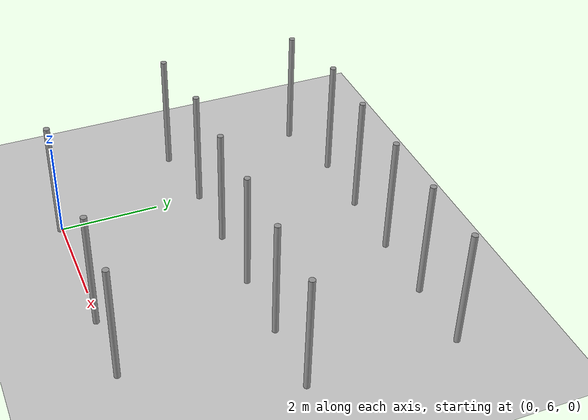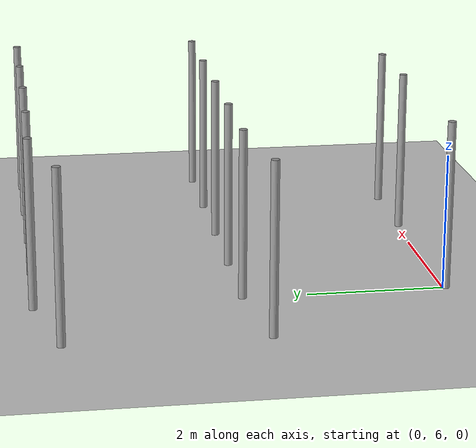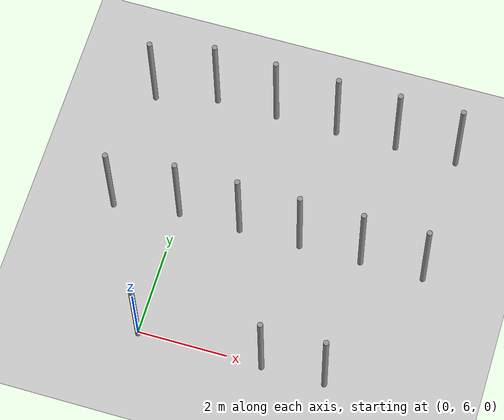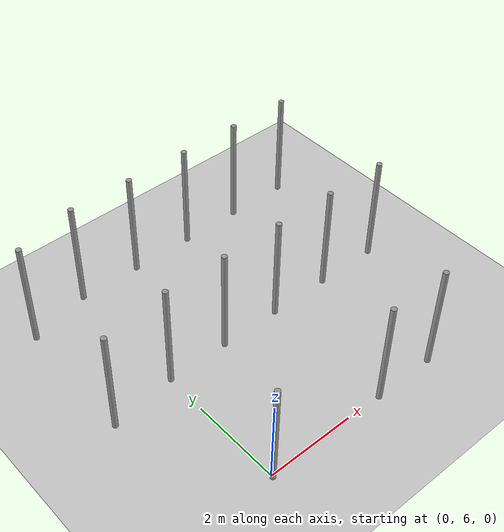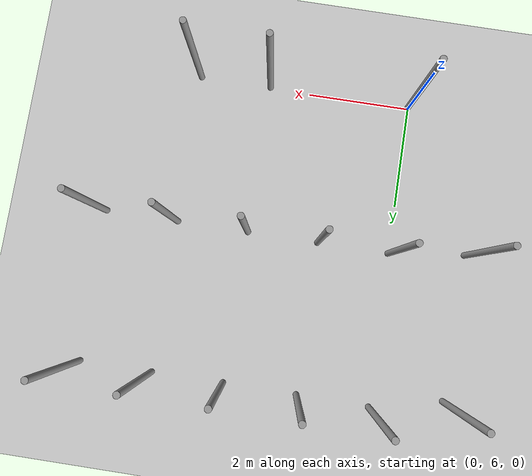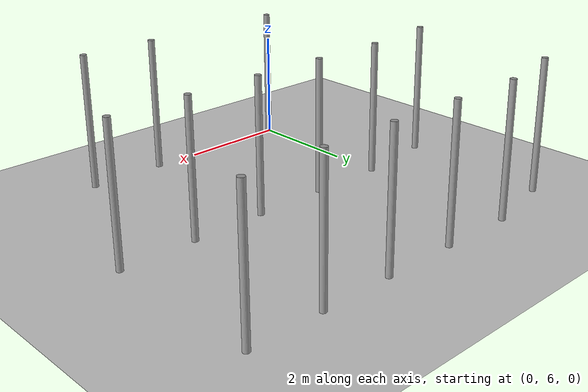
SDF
<sdf version="1.6">
 <world name="default">
  <model name="ground_plane">
   <static>1</static>
   <link name="link">
    <collision name="collision">
     <geometry><plane><normal>0 0 1</normal><size>100 100</size></plane></geometry>
     <surface><friction><ode><mu>100</mu><mu2>50</mu2></ode></friction></surface>
    </collision>
    <visual name="visual">
     <cast_shadows>0</cast_shadows>
     <geometry><plane><normal>0 0 1</normal><size>100 100</size></plane></geometry>
     <material>
      <script><uri>file://media/materials/scripts/gazebo.material</uri><name>Gazebo/Grey</name></script>
     </material>
    </visual>
   </link>
  </model>
  <model name="pole">
   <link name="link_0">
    <inertial>
     <mass>0.0364582</mass>
     <inertia>
      <ixx>0.00312124</ixx>
      <ixy>0</ixy>
      <ixz>0</ixz>
      <iyy>0.00312124</iyy>
      <iyz>0</iyz>
      <izz>0.00016615</izz>
     </inertia>
    </inertial>
    <visual name="visual">
     <geometry><cylinder><radius>0.06</radius><length>2.5</length></cylinder></geometry>
     <material>
      <lighting>1</lighting>
      <script><uri>file://media/materials/scripts/gazebo.material</uri><name>Gazebo/Grey</name></script>
      <ambient>0.3 0.3 0.3 1</ambient>
      <diffuse>0.7 0.7 0.7 1</diffuse>
      <specular>0.01 0.01 0.01 1</specular>
      <emissive>0 0 0 1</emissive>
      <shader type="vertex"><normal_map>__default__</normal_map></shader>
     </material>
    </visual>
    <collision name="collision">
     <geometry><cylinder><radius>0.06</radius><length>2.5</length></cylinder></geometry>
     <surface>
      <friction>
       <ode><mu>1</mu><mu2>1</mu2><fdir1>0 0 0</fdir1><slip1>0</slip1><slip2>0</slip2></ode>
       <torsional>
        <coefficient>1</coefficient>
        <patch_radius>0</patch_radius>
        <surface_radius>0</surface_radius>
        <use_patch_radius>1</use_patch_radius>
        <ode><slip>0</slip></ode>
       </torsional>
      </friction>
      <bounce><restitution_coefficient>0</restitution_coefficient><threshold>1e+06</threshold></bounce>
      <contact>
       <collide_without_contact>0</collide_without_contact>
       <collide_without_contact_bitmask>1</collide_without_contact_bitmask>
       <collide_bitmask>1</collide_bitmask>
       <ode>
        <soft_cfm>0</soft_cfm>
        <soft_erp>0.2</soft_erp>
        <kp>1e+13</kp>
        <kd>1</kd>
        <max_vel>0.01</max_vel>
        <min_depth>0</min_depth>
       </ode>
       <bullet>
        <split_impulse>1</split_impulse>
        <split_impulse_penetration_threshold>-0.01</split_impulse_penetration_threshold>
        <soft_cfm>0</soft_cfm>
        <soft_erp>0.2</soft_erp>
        <kp>1e+13</kp>
        <kd>1</kd>
       </bullet>
      </contact>
     </surface>
    </collision>
   </link>
   <static>0</static>
   <pose>0.00673 5.96152 1.24999 0 -6e-06 -0.017984</pose>
  </model>
  <model name="pole_0">
   <link name="link_0">
    <inertial>
     <mass>0.0364582</mass>
     <inertia>
      <ixx>0.00312124</ixx>
      <ixy>0</ixy>
      <ixz>0</ixz>
      <iyy>0.00312124</iyy>
      <iyz>0</iyz>
      <izz>0.00016615</izz>
     </inertia>
    </inertial>
    <visual name="visual">
     <geometry><cylinder><radius>0.06</radius><length>2.5</length></cylinder></geometry>
     <material>
      <lighting>1</lighting>
      <script><uri>file://media/materials/scripts/gazebo.material</uri><name>Gazebo/Grey</name></script>
      <ambient>0.3 0.3 0.3 1</ambient>
      <diffuse>0.7 0.7 0.7 1</diffuse>
      <specular>0.01 0.01 0.01 1</specular>
      <emissive>0 0 0 1</emissive>
      <shader type="vertex"><normal_map>__default__</normal_map></shader>
     </material>
    </visual>
    <collision name="collision">
     <geometry><cylinder><radius>0.06</radius><length>2.5</length></cylinder></geometry>
     <surface>
      <friction>
       <ode><mu>1</mu><mu2>1</mu2><fdir1>0 0 0</fdir1><slip1>0</slip1><slip2>0</slip2></ode>
       <torsional>
        <coefficient>1</coefficient>
        <patch_radius>0</patch_radius>
        <surface_radius>0</surface_radius>
        <use_patch_radius>1</use_patch_radius>
        <ode><slip>0</slip></ode>
       </torsional>
      </friction>
      <bounce><restitution_coefficient>0</restitution_coefficient><threshold>1e+06</threshold></bounce>
      <contact>
       <collide_without_contact>0</collide_without_contact>
       <collide_without_contact_bitmask>1</collide_without_contact_bitmask>
       <collide_bitmask>1</collide_bitmask>
       <ode>
        <soft_cfm>0</soft_cfm>
        <soft_erp>0.2</soft_erp>
        <kp>1e+13</kp>
        <kd>1</kd>
        <max_vel>0.01</max_vel>
        <min_depth>0</min_depth>
       </ode>
       <bullet>
        <split_impulse>1</split_impulse>
        <split_impulse_penetration_threshold>-0.01</split_impulse_penetration_threshold>
        <soft_cfm>0</soft_cfm>
        <soft_erp>0.2</soft_erp>
        <kp>1e+13</kp>
        <kd>1</kd>
       </bullet>
      </contact>
     </surface>
    </collision>
   </link>
   <static>0</static>
   <pose>0.013537 8.94163 1.24999 0 -1e-06 -0.020818</pose>
  </model>
  <model name="pole_1">
   <link name="link_0">
    <inertial>
     <mass>0.0364582</mass>
     <inertia>
      <ixx>0.00312124</ixx>
      <ixy>0</ixy>
      <ixz>0</ixz>
      <iyy>0.00312124</iyy>
      <iyz>0</iyz>
      <izz>0.00016615</izz>
     </inertia>
    </inertial>
    <visual name="visual">
     <geometry><cylinder><radius>0.06</radius><length>2.5</length></cylinder></geometry>
     <material>
      <lighting>1</lighting>
      <script><uri>file://media/materials/scripts/gazebo.material</uri><name>Gazebo/Grey</name></script>
      <ambient>0.3 0.3 0.3 1</ambient>
      <diffuse>0.7 0.7 0.7 1</diffuse>
      <specular>0.01 0.01 0.01 1</specular>
      <emissive>0 0 0 1</emissive>
      <shader type="vertex"><normal_map>__default__</normal_map></shader>
     </material>
    </visual>
    <collision name="collision">
     <geometry><cylinder><radius>0.06</radius><length>2.5</length></cylinder></geometry>
     <surface>
      <friction>
       <ode><mu>1</mu><mu2>1</mu2><fdir1>0 0 0</fdir1><slip1>0</slip1><slip2>0</slip2></ode>
       <torsional>
        <coefficient>1</coefficient>
        <patch_radius>0</patch_radius>
        <surface_radius>0</surface_radius>
        <use_patch_radius>1</use_patch_radius>
        <ode><slip>0</slip></ode>
       </torsional>
      </friction>
      <bounce><restitution_coefficient>0</restitution_coefficient><threshold>1e+06</threshold></bounce>
      <contact>
       <collide_without_contact>0</collide_without_contact>
       <collide_without_contact_bitmask>1</collide_without_contact_bitmask>
       <collide_bitmask>1</collide_bitmask>
       <ode>
        <soft_cfm>0</soft_cfm>
        <soft_erp>0.2</soft_erp>
        <kp>1e+13</kp>
        <kd>1</kd>
        <max_vel>0.01</max_vel>
        <min_depth>0</min_depth>
       </ode>
       <bullet>
        <split_impulse>1</split_impulse>
        <split_impulse_penetration_threshold>-0.01</split_impulse_penetration_threshold>
        <soft_cfm>0</soft_cfm>
        <soft_erp>0.2</soft_erp>
        <kp>1e+13</kp>
        <kd>1</kd>
       </bullet>
      </contact>
     </surface>
    </collision>
   </link>
   <static>0</static>
   <pose>-0.008089 11.9214 1.25 0 1e-06 -0.020458</pose>
  </model>
  <model name="pole_13">
   <link name="link_0">
    <inertial>
     <mass>0.0364582</mass>
     <inertia>
      <ixx>0.00312124</ixx>
      <ixy>0</ixy>
      <ixz>0</ixz>
      <iyy>0.00312124</iyy>
      <iyz>0</iyz>
      <izz>0.00016615</izz>
     </inertia>
    </inertial>
    <visual name="visual">
     <geometry><cylinder><radius>0.06</radius><length>2.5</length></cylinder></geometry>
     <material>
      <lighting>1</lighting>
      <script><uri>file://media/materials/scripts/gazebo.material</uri><name>Gazebo/Grey</name></script>
      <ambient>0.3 0.3 0.3 1</ambient>
      <diffuse>0.7 0.7 0.7 1</diffuse>
      <specular>0.01 0.01 0.01 1</specular>
      <emissive>0 0 0 1</emissive>
      <shader type="vertex"><normal_map>__default__</normal_map></shader>
     </material>
    </visual>
    <collision name="collision">
     <geometry><cylinder><radius>0.06</radius><length>2.5</length></cylinder></geometry>
     <surface>
      <friction>
       <ode><mu>1</mu><mu2>1</mu2><fdir1>0 0 0</fdir1><slip1>0</slip1><slip2>0</slip2></ode>
       <torsional>
        <coefficient>1</coefficient>
        <patch_radius>0</patch_radius>
        <surface_radius>0</surface_radius>
        <use_patch_radius>1</use_patch_radius>
        <ode><slip>0</slip></ode>
       </torsional>
      </friction>
      <bounce><restitution_coefficient>0</restitution_coefficient><threshold>1e+06</threshold></bounce>
      <contact>
       <collide_without_contact>0</collide_without_contact>
       <collide_without_contact_bitmask>1</collide_without_contact_bitmask>
       <collide_bitmask>1</collide_bitmask>
       <ode>
        <soft_cfm>0</soft_cfm>
        <soft_erp>0.2</soft_erp>
        <kp>1e+13</kp>
        <kd>1</kd>
        <max_vel>0.01</max_vel>
        <min_depth>0</min_depth>
       </ode>
       <bullet>
        <split_impulse>1</split_impulse>
        <split_impulse_penetration_threshold>-0.01</split_impulse_penetration_threshold>
        <soft_cfm>0</soft_cfm>
        <soft_erp>0.2</soft_erp>
        <kp>1e+13</kp>
        <kd>1</kd>
       </bullet>
      </contact>
     </surface>
    </collision>
   </link>
   <static>0</static>
   <pose>2.80805 5.96133 1.24999 -0 1e-06 -0.014908</pose>
  </model>
  <model name="pole_14">
   <link name="link_0">
    <inertial>
     <mass>0.0364582</mass>
     <inertia>
      <ixx>0.00312124</ixx>
      <ixy>0</ixy>
      <ixz>0</ixz>
      <iyy>0.00312124</iyy>
      <iyz>0</iyz>
      <izz>0.00016615</izz>
     </inertia>
    </inertial>
    <visual name="visual">
     <geometry><cylinder><radius>0.06</radius><length>2.5</length></cylinder></geometry>
     <material>
      <lighting>1</lighting>
      <script><uri>file://media/materials/scripts/gazebo.material</uri><name>Gazebo/Grey</name></script>
      <ambient>0.3 0.3 0.3 1</ambient>
      <diffuse>0.7 0.7 0.7 1</diffuse>
      <specular>0.01 0.01 0.01 1</specular>
      <emissive>0 0 0 1</emissive>
      <shader type="vertex"><normal_map>__default__</normal_map></shader>
     </material>
    </visual>
    <collision name="collision">
     <geometry><cylinder><radius>0.06</radius><length>2.5</length></cylinder></geometry>
     <surface>
      <friction>
       <ode><mu>1</mu><mu2>1</mu2><fdir1>0 0 0</fdir1><slip1>0</slip1><slip2>0</slip2></ode>
       <torsional>
        <coefficient>1</coefficient>
        <patch_radius>0</patch_radius>
        <surface_radius>0</surface_radius>
        <use_patch_radius>1</use_patch_radius>
        <ode><slip>0</slip></ode>
       </torsional>
      </friction>
      <bounce><restitution_coefficient>0</restitution_coefficient><threshold>1e+06</threshold></bounce>
      <contact>
       <collide_without_contact>0</collide_without_contact>
       <collide_without_contact_bitmask>1</collide_without_contact_bitmask>
       <collide_bitmask>1</collide_bitmask>
       <ode>
        <soft_cfm>0</soft_cfm>
        <soft_erp>0.2</soft_erp>
        <kp>1e+13</kp>
        <kd>1</kd>
        <max_vel>0.01</max_vel>
        <min_depth>0</min_depth>
       </ode>
       <bullet>
        <split_impulse>1</split_impulse>
        <split_impulse_penetration_threshold>-0.01</split_impulse_penetration_threshold>
        <soft_cfm>0</soft_cfm>
        <soft_erp>0.2</soft_erp>
        <kp>1e+13</kp>
        <kd>1</kd>
       </bullet>
      </contact>
     </surface>
    </collision>
   </link>
   <static>0</static>
   <pose>4.21953 5.96127 1.24999 0 1e-06 -0.013446</pose>
  </model>
  <model name="pole_16">
   <link name="link_0">
    <inertial>
     <mass>0.0364582</mass>
     <inertia>
      <ixx>0.00312124</ixx>
      <ixy>0</ixy>
      <ixz>0</ixz>
      <iyy>0.00312124</iyy>
      <iyz>0</iyz>
      <izz>0.00016615</izz>
     </inertia>
    </inertial>
    <visual name="visual">
     <geometry><cylinder><radius>0.06</radius><length>2.5</length></cylinder></geometry>
     <material>
      <lighting>1</lighting>
      <script><uri>file://media/materials/scripts/gazebo.material</uri><name>Gazebo/Grey</name></script>
      <ambient>0.3 0.3 0.3 1</ambient>
      <diffuse>0.7 0.7 0.7 1</diffuse>
      <specular>0.01 0.01 0.01 1</specular>
      <emissive>0 0 0 1</emissive>
      <shader type="vertex"><normal_map>__default__</normal_map></shader>
     </material>
    </visual>
    <collision name="collision">
     <geometry><cylinder><radius>0.06</radius><length>2.5</length></cylinder></geometry>
     <surface>
      <friction>
       <ode><mu>1</mu><mu2>1</mu2><fdir1>0 0 0</fdir1><slip1>0</slip1><slip2>0</slip2></ode>
       <torsional>
        <coefficient>1</coefficient>
        <patch_radius>0</patch_radius>
        <surface_radius>0</surface_radius>
        <use_patch_radius>1</use_patch_radius>
        <ode><slip>0</slip></ode>
       </torsional>
      </friction>
      <bounce><restitution_coefficient>0</restitution_coefficient><threshold>1e+06</threshold></bounce>
      <contact>
       <collide_without_contact>0</collide_without_contact>
       <collide_without_contact_bitmask>1</collide_without_contact_bitmask>
       <collide_bitmask>1</collide_bitmask>
       <ode>
        <soft_cfm>0</soft_cfm>
        <soft_erp>0.2</soft_erp>
        <kp>1e+13</kp>
        <kd>1</kd>
        <max_vel>0.01</max_vel>
        <min_depth>0</min_depth>
       </ode>
       <bullet>
        <split_impulse>1</split_impulse>
        <split_impulse_penetration_threshold>-0.01</split_impulse_penetration_threshold>
        <soft_cfm>0</soft_cfm>
        <soft_erp>0.2</soft_erp>
        <kp>1e+13</kp>
        <kd>1</kd>
       </bullet>
      </contact>
     </surface>
    </collision>
   </link>
   <static>0</static>
   <pose>1.41315 8.94092 1.25 -1e-06 1e-06 -0.01461</pose>
  </model>
  <model name="pole_17">
   <link name="link_0">
    <inertial>
     <mass>0.0364582</mass>
     <inertia>
      <ixx>0.00312124</ixx>
      <ixy>0</ixy>
      <ixz>0</ixz>
      <iyy>0.00312124</iyy>
      <iyz>0</iyz>
      <izz>0.00016615</izz>
     </inertia>
    </inertial>
    <visual name="visual">
     <geometry><cylinder><radius>0.06</radius><length>2.5</length></cylinder></geometry>
     <material>
      <lighting>1</lighting>
      <script><uri>file://media/materials/scripts/gazebo.material</uri><name>Gazebo/Grey</name></script>
      <ambient>0.3 0.3 0.3 1</ambient>
      <diffuse>0.7 0.7 0.7 1</diffuse>
      <specular>0.01 0.01 0.01 1</specular>
      <emissive>0 0 0 1</emissive>
      <shader type="vertex"><normal_map>__default__</normal_map></shader>
     </material>
    </visual>
    <collision name="collision">
     <geometry><cylinder><radius>0.06</radius><length>2.5</length></cylinder></geometry>
     <surface>
      <friction>
       <ode><mu>1</mu><mu2>1</mu2><fdir1>0 0 0</fdir1><slip1>0</slip1><slip2>0</slip2></ode>
       <torsional>
        <coefficient>1</coefficient>
        <patch_radius>0</patch_radius>
        <surface_radius>0</surface_radius>
        <use_patch_radius>1</use_patch_radius>
        <ode><slip>0</slip></ode>
       </torsional>
      </friction>
      <bounce><restitution_coefficient>0</restitution_coefficient><threshold>1e+06</threshold></bounce>
      <contact>
       <collide_without_contact>0</collide_without_contact>
       <collide_without_contact_bitmask>1</collide_without_contact_bitmask>
       <collide_bitmask>1</collide_bitmask>
       <ode>
        <soft_cfm>0</soft_cfm>
        <soft_erp>0.2</soft_erp>
        <kp>1e+13</kp>
        <kd>1</kd>
        <max_vel>0.01</max_vel>
        <min_depth>0</min_depth>
       </ode>
       <bullet>
        <split_impulse>1</split_impulse>
        <split_impulse_penetration_threshold>-0.01</split_impulse_penetration_threshold>
        <soft_cfm>0</soft_cfm>
        <soft_erp>0.2</soft_erp>
        <kp>1e+13</kp>
        <kd>1</kd>
       </bullet>
      </contact>
     </surface>
    </collision>
   </link>
   <static>0</static>
   <pose>2.7999 8.94105 1.24999 1e-06 -1e-06 -0.01225</pose>
  </model>
  <model name="pole_18">
   <link name="link_0">
    <inertial>
     <mass>0.0364582</mass>
     <inertia>
      <ixx>0.00312124</ixx>
      <ixy>0</ixy>
      <ixz>0</ixz>
      <iyy>0.00312124</iyy>
      <iyz>0</iyz>
      <izz>0.00016615</izz>
     </inertia>
    </inertial>
    <visual name="visual">
     <geometry><cylinder><radius>0.06</radius><length>2.5</length></cylinder></geometry>
     <material>
      <lighting>1</lighting>
      <script><uri>file://media/materials/scripts/gazebo.material</uri><name>Gazebo/Grey</name></script>
      <ambient>0.3 0.3 0.3 1</ambient>
      <diffuse>0.7 0.7 0.7 1</diffuse>
      <specular>0.01 0.01 0.01 1</specular>
      <emissive>0 0 0 1</emissive>
      <shader type="vertex"><normal_map>__default__</normal_map></shader>
     </material>
    </visual>
    <collision name="collision">
     <geometry><cylinder><radius>0.06</radius><length>2.5</length></cylinder></geometry>
     <surface>
      <friction>
       <ode><mu>1</mu><mu2>1</mu2><fdir1>0 0 0</fdir1><slip1>0</slip1><slip2>0</slip2></ode>
       <torsional>
        <coefficient>1</coefficient>
        <patch_radius>0</patch_radius>
        <surface_radius>0</surface_radius>
        <use_patch_radius>1</use_patch_radius>
        <ode><slip>0</slip></ode>
       </torsional>
      </friction>
      <bounce><restitution_coefficient>0</restitution_coefficient><threshold>1e+06</threshold></bounce>
      <contact>
       <collide_without_contact>0</collide_without_contact>
       <collide_without_contact_bitmask>1</collide_without_contact_bitmask>
       <collide_bitmask>1</collide_bitmask>
       <ode>
        <soft_cfm>0</soft_cfm>
        <soft_erp>0.2</soft_erp>
        <kp>1e+13</kp>
        <kd>1</kd>
        <max_vel>0.01</max_vel>
        <min_depth>0</min_depth>
       </ode>
       <bullet>
        <split_impulse>1</split_impulse>
        <split_impulse_penetration_threshold>-0.01</split_impulse_penetration_threshold>
        <soft_cfm>0</soft_cfm>
        <soft_erp>0.2</soft_erp>
        <kp>1e+13</kp>
        <kd>1</kd>
       </bullet>
      </contact>
     </surface>
    </collision>
   </link>
   <static>0</static>
   <pose>4.2039 8.94102 1.25 -1e-06 1e-06 -0.009517</pose>
  </model>
  <model name="pole_19">
   <link name="link_0">
    <inertial>
     <mass>0.0364582</mass>
     <inertia>
      <ixx>0.00312124</ixx>
      <ixy>0</ixy>
      <ixz>0</ixz>
      <iyy>0.00312124</iyy>
      <iyz>0</iyz>
      <izz>0.00016615</izz>
     </inertia>
    </inertial>
    <visual name="visual">
     <geometry><cylinder><radius>0.06</radius><length>2.5</length></cylinder></geometry>
     <material>
      <lighting>1</lighting>
      <script><uri>file://media/materials/scripts/gazebo.material</uri><name>Gazebo/Grey</name></script>
      <ambient>0.3 0.3 0.3 1</ambient>
      <diffuse>0.7 0.7 0.7 1</diffuse>
      <specular>0.01 0.01 0.01 1</specular>
      <emissive>0 0 0 1</emissive>
      <shader type="vertex"><normal_map>__default__</normal_map></shader>
     </material>
    </visual>
    <collision name="collision">
     <geometry><cylinder><radius>0.06</radius><length>2.5</length></cylinder></geometry>
     <surface>
      <friction>
       <ode><mu>1</mu><mu2>1</mu2><fdir1>0 0 0</fdir1><slip1>0</slip1><slip2>0</slip2></ode>
       <torsional>
        <coefficient>1</coefficient>
        <patch_radius>0</patch_radius>
        <surface_radius>0</surface_radius>
        <use_patch_radius>1</use_patch_radius>
        <ode><slip>0</slip></ode>
       </torsional>
      </friction>
      <bounce><restitution_coefficient>0</restitution_coefficient><threshold>1e+06</threshold></bounce>
      <contact>
       <collide_without_contact>0</collide_without_contact>
       <collide_without_contact_bitmask>1</collide_without_contact_bitmask>
       <collide_bitmask>1</collide_bitmask>
       <ode>
        <soft_cfm>0</soft_cfm>
        <soft_erp>0.2</soft_erp>
        <kp>1e+13</kp>
        <kd>1</kd>
        <max_vel>0.01</max_vel>
        <min_depth>0</min_depth>
       </ode>
       <bullet>
        <split_impulse>1</split_impulse>
        <split_impulse_penetration_threshold>-0.01</split_impulse_penetration_threshold>
        <soft_cfm>0</soft_cfm>
        <soft_erp>0.2</soft_erp>
        <kp>1e+13</kp>
        <kd>1</kd>
       </bullet>
      </contact>
     </surface>
    </collision>
   </link>
   <static>0</static>
   <pose>5.62938 8.94092 1.25 0 1e-06 -0.011749</pose>
  </model>
  <model name="pole_20">
   <link name="link_0">
    <inertial>
     <mass>0.0364582</mass>
     <inertia>
      <ixx>0.00312124</ixx>
      <ixy>0</ixy>
      <ixz>0</ixz>
      <iyy>0.00312124</iyy>
      <iyz>0</iyz>
      <izz>0.00016615</izz>
     </inertia>
    </inertial>
    <visual name="visual">
     <geometry><cylinder><radius>0.06</radius><length>2.5</length></cylinder></geometry>
     <material>
      <lighting>1</lighting>
      <script><uri>file://media/materials/scripts/gazebo.material</uri><name>Gazebo/Grey</name></script>
      <ambient>0.3 0.3 0.3 1</ambient>
      <diffuse>0.7 0.7 0.7 1</diffuse>
      <specular>0.01 0.01 0.01 1</specular>
      <emissive>0 0 0 1</emissive>
      <shader type="vertex"><normal_map>__default__</normal_map></shader>
     </material>
    </visual>
    <collision name="collision">
     <geometry><cylinder><radius>0.06</radius><length>2.5</length></cylinder></geometry>
     <surface>
      <friction>
       <ode><mu>1</mu><mu2>1</mu2><fdir1>0 0 0</fdir1><slip1>0</slip1><slip2>0</slip2></ode>
       <torsional>
        <coefficient>1</coefficient>
        <patch_radius>0</patch_radius>
        <surface_radius>0</surface_radius>
        <use_patch_radius>1</use_patch_radius>
        <ode><slip>0</slip></ode>
       </torsional>
      </friction>
      <bounce><restitution_coefficient>0</restitution_coefficient><threshold>1e+06</threshold></bounce>
      <contact>
       <collide_without_contact>0</collide_without_contact>
       <collide_without_contact_bitmask>1</collide_without_contact_bitmask>
       <collide_bitmask>1</collide_bitmask>
       <ode>
        <soft_cfm>0</soft_cfm>
        <soft_erp>0.2</soft_erp>
        <kp>1e+13</kp>
        <kd>1</kd>
        <max_vel>0.01</max_vel>
        <min_depth>0</min_depth>
       </ode>
       <bullet>
        <split_impulse>1</split_impulse>
        <split_impulse_penetration_threshold>-0.01</split_impulse_penetration_threshold>
        <soft_cfm>0</soft_cfm>
        <soft_erp>0.2</soft_erp>
        <kp>1e+13</kp>
        <kd>1</kd>
       </bullet>
      </contact>
     </surface>
    </collision>
   </link>
   <static>0</static>
   <pose>1.39582 11.9008 1.25 -1e-06 1e-06 -0.008718</pose>
  </model>
  <model name="pole_21">
   <link name="link_0">
    <inertial>
     <mass>0.0364582</mass>
     <inertia>
      <ixx>0.00312124</ixx>
      <ixy>0</ixy>
      <ixz>0</ixz>
      <iyy>0.00312124</iyy>
      <iyz>0</iyz>
      <izz>0.00016615</izz>
     </inertia>
    </inertial>
    <visual name="visual">
     <geometry><cylinder><radius>0.06</radius><length>2.5</length></cylinder></geometry>
     <material>
      <lighting>1</lighting>
      <script><uri>file://media/materials/scripts/gazebo.material</uri><name>Gazebo/Grey</name></script>
      <ambient>0.3 0.3 0.3 1</ambient>
      <diffuse>0.7 0.7 0.7 1</diffuse>
      <specular>0.01 0.01 0.01 1</specular>
      <emissive>0 0 0 1</emissive>
      <shader type="vertex"><normal_map>__default__</normal_map></shader>
     </material>
    </visual>
    <collision name="collision">
     <geometry><cylinder><radius>0.06</radius><length>2.5</length></cylinder></geometry>
     <surface>
      <friction>
       <ode><mu>1</mu><mu2>1</mu2><fdir1>0 0 0</fdir1><slip1>0</slip1><slip2>0</slip2></ode>
       <torsional>
        <coefficient>1</coefficient>
        <patch_radius>0</patch_radius>
        <surface_radius>0</surface_radius>
        <use_patch_radius>1</use_patch_radius>
        <ode><slip>0</slip></ode>
       </torsional>
      </friction>
      <bounce><restitution_coefficient>0</restitution_coefficient><threshold>1e+06</threshold></bounce>
      <contact>
       <collide_without_contact>0</collide_without_contact>
       <collide_without_contact_bitmask>1</collide_without_contact_bitmask>
       <collide_bitmask>1</collide_bitmask>
       <ode>
        <soft_cfm>0</soft_cfm>
        <soft_erp>0.2</soft_erp>
        <kp>1e+13</kp>
        <kd>1</kd>
        <max_vel>0.01</max_vel>
        <min_depth>0</min_depth>
       </ode>
       <bullet>
        <split_impulse>1</split_impulse>
        <split_impulse_penetration_threshold>-0.01</split_impulse_penetration_threshold>
        <soft_cfm>0</soft_cfm>
        <soft_erp>0.2</soft_erp>
        <kp>1e+13</kp>
        <kd>1</kd>
       </bullet>
      </contact>
     </surface>
    </collision>
   </link>
   <static>0</static>
   <pose>2.82135 11.8933 1.24998 -0.000105 0.000195 0.254556</pose>
  </model>
  <model name="pole_22">
   <link name="link_0">
    <inertial>
     <mass>0.0364582</mass>
     <inertia>
      <ixx>0.00312124</ixx>
      <ixy>0</ixy>
      <ixz>0</ixz>
      <iyy>0.00312124</iyy>
      <iyz>0</iyz>
      <izz>0.00016615</izz>
     </inertia>
    </inertial>
    <visual name="visual">
     <geometry><cylinder><radius>0.06</radius><length>2.5</length></cylinder></geometry>
     <material>
      <lighting>1</lighting>
      <script><uri>file://media/materials/scripts/gazebo.material</uri><name>Gazebo/Grey</name></script>
      <ambient>0.3 0.3 0.3 1</ambient>
      <diffuse>0.7 0.7 0.7 1</diffuse>
      <specular>0.01 0.01 0.01 1</specular>
      <emissive>0 0 0 1</emissive>
      <shader type="vertex"><normal_map>__default__</normal_map></shader>
     </material>
    </visual>
    <collision name="collision">
     <geometry><cylinder><radius>0.06</radius><length>2.5</length></cylinder></geometry>
     <surface>
      <friction>
       <ode><mu>1</mu><mu2>1</mu2><fdir1>0 0 0</fdir1><slip1>0</slip1><slip2>0</slip2></ode>
       <torsional>
        <coefficient>1</coefficient>
        <patch_radius>0</patch_radius>
        <surface_radius>0</surface_radius>
        <use_patch_radius>1</use_patch_radius>
        <ode><slip>0</slip></ode>
       </torsional>
      </friction>
      <bounce><restitution_coefficient>0</restitution_coefficient><threshold>1e+06</threshold></bounce>
      <contact>
       <collide_without_contact>0</collide_without_contact>
       <collide_without_contact_bitmask>1</collide_without_contact_bitmask>
       <collide_bitmask>1</collide_bitmask>
       <ode>
        <soft_cfm>0</soft_cfm>
        <soft_erp>0.2</soft_erp>
        <kp>1e+13</kp>
        <kd>1</kd>
        <max_vel>0.01</max_vel>
        <min_depth>0</min_depth>
       </ode>
       <bullet>
        <split_impulse>1</split_impulse>
        <split_impulse_penetration_threshold>-0.01</split_impulse_penetration_threshold>
        <soft_cfm>0</soft_cfm>
        <soft_erp>0.2</soft_erp>
        <kp>1e+13</kp>
        <kd>1</kd>
       </bullet>
      </contact>
     </surface>
    </collision>
   </link>
   <static>0</static>
   <pose>4.21209 11.9006 1.24999 -1e-06 4e-06 -0.005381</pose>
  </model>
  <model name="pole_23">
   <link name="link_0">
    <inertial>
     <mass>0.0364582</mass>
     <inertia>
      <ixx>0.00312124</ixx>
      <ixy>0</ixy>
      <ixz>0</ixz>
      <iyy>0.00312124</iyy>
      <iyz>0</iyz>
      <izz>0.00016615</izz>
     </inertia>
    </inertial>
    <visual name="visual">
     <geometry><cylinder><radius>0.06</radius><length>2.5</length></cylinder></geometry>
     <material>
      <lighting>1</lighting>
      <script><uri>file://media/materials/scripts/gazebo.material</uri><name>Gazebo/Grey</name></script>
      <ambient>0.3 0.3 0.3 1</ambient>
      <diffuse>0.7 0.7 0.7 1</diffuse>
      <specular>0.01 0.01 0.01 1</specular>
      <emissive>0 0 0 1</emissive>
      <shader type="vertex"><normal_map>__default__</normal_map></shader>
     </material>
    </visual>
    <collision name="collision">
     <geometry><cylinder><radius>0.06</radius><length>2.5</length></cylinder></geometry>
     <surface>
      <friction>
       <ode><mu>1</mu><mu2>1</mu2><fdir1>0 0 0</fdir1><slip1>0</slip1><slip2>0</slip2></ode>
       <torsional>
        <coefficient>1</coefficient>
        <patch_radius>0</patch_radius>
        <surface_radius>0</surface_radius>
        <use_patch_radius>1</use_patch_radius>
        <ode><slip>0</slip></ode>
       </torsional>
      </friction>
      <bounce><restitution_coefficient>0</restitution_coefficient><threshold>1e+06</threshold></bounce>
      <contact>
       <collide_without_contact>0</collide_without_contact>
       <collide_without_contact_bitmask>1</collide_without_contact_bitmask>
       <collide_bitmask>1</collide_bitmask>
       <ode>
        <soft_cfm>0</soft_cfm>
        <soft_erp>0.2</soft_erp>
        <kp>1e+13</kp>
        <kd>1</kd>
        <max_vel>0.01</max_vel>
        <min_depth>0</min_depth>
       </ode>
       <bullet>
        <split_impulse>1</split_impulse>
        <split_impulse_penetration_threshold>-0.01</split_impulse_penetration_threshold>
        <soft_cfm>0</soft_cfm>
        <soft_erp>0.2</soft_erp>
        <kp>1e+13</kp>
        <kd>1</kd>
       </bullet>
      </contact>
     </surface>
    </collision>
   </link>
   <static>0</static>
   <pose>5.61609 11.9007 1.25 -0 1e-06 -0.006787</pose>
  </model>
  <model name="pole_2_clone_2">
   <link name="link_0">
    <inertial>
     <mass>0.0364582</mass>
     <inertia>
      <ixx>0.00312124</ixx>
      <ixy>0</ixy>
      <ixz>0</ixz>
      <iyy>0.00312124</iyy>
      <iyz>0</iyz>
      <izz>0.00016615</izz>
     </inertia>
    </inertial>
    <visual name="visual">
     <geometry><cylinder><radius>0.06</radius><length>2.5</length></cylinder></geometry>
     <material>
      <lighting>1</lighting>
      <script><uri>file://media/materials/scripts/gazebo.material</uri><name>Gazebo/Grey</name></script>
      <ambient>0.3 0.3 0.3 1</ambient>
      <diffuse>0.7 0.7 0.7 1</diffuse>
      <specular>0.01 0.01 0.01 1</specular>
      <emissive>0 0 0 1</emissive>
      <shader type="vertex"><normal_map>__default__</normal_map></shader>
     </material>
    </visual>
    <collision name="collision">
     <geometry><cylinder><radius>0.06</radius><length>2.5</length></cylinder></geometry>
     <surface>
      <friction>
       <ode><mu>1</mu><mu2>1</mu2><fdir1>0 0 0</fdir1><slip1>0</slip1><slip2>0</slip2></ode>
       <torsional>
        <coefficient>1</coefficient>
        <patch_radius>0</patch_radius>
        <surface_radius>0</surface_radius>
        <use_patch_radius>1</use_patch_radius>
        <ode><slip>0</slip></ode>
       </torsional>
      </friction>
      <bounce><restitution_coefficient>0</restitution_coefficient><threshold>1e+06</threshold></bounce>
      <contact>
       <collide_without_contact>0</collide_without_contact>
       <collide_without_contact_bitmask>1</collide_without_contact_bitmask>
       <collide_bitmask>1</collide_bitmask>
       <ode>
        <soft_cfm>0</soft_cfm>
        <soft_erp>0.2</soft_erp>
        <kp>1e+13</kp>
        <kd>1</kd>
        <max_vel>0.01</max_vel>
        <min_depth>0</min_depth>
       </ode>
       <bullet>
        <split_impulse>1</split_impulse>
        <split_impulse_penetration_threshold>-0.01</split_impulse_penetration_threshold>
        <soft_cfm>0</soft_cfm>
        <soft_erp>0.2</soft_erp>
        <kp>1e+13</kp>
        <kd>1</kd>
       </bullet>
      </contact>
     </surface>
    </collision>
   </link>
   <static>0</static>
   <pose>-1.47772 8.75246 1.24999 0 1e-06 0.042919</pose>
  </model>
  <model name="pole_2_clone_3">
   <link name="link_0">
    <inertial>
     <mass>0.0364582</mass>
     <inertia>
      <ixx>0.00312124</ixx>
      <ixy>0</ixy>
      <ixz>0</ixz>
      <iyy>0.00312124</iyy>
      <iyz>0</iyz>
      <izz>0.00016615</izz>
     </inertia>
    </inertial>
    <visual name="visual">
     <geometry><cylinder><radius>0.06</radius><length>2.5</length></cylinder></geometry>
     <material>
      <lighting>1</lighting>
      <script><uri>file://media/materials/scripts/gazebo.material</uri><name>Gazebo/Grey</name></script>
      <ambient>0.3 0.3 0.3 1</ambient>
      <diffuse>0.7 0.7 0.7 1</diffuse>
      <specular>0.01 0.01 0.01 1</specular>
      <emissive>0 0 0 1</emissive>
      <shader type="vertex"><normal_map>__default__</normal_map></shader>
     </material>
    </visual>
    <collision name="collision">
     <geometry><cylinder><radius>0.06</radius><length>2.5</length></cylinder></geometry>
     <surface>
      <friction>
       <ode><mu>1</mu><mu2>1</mu2><fdir1>0 0 0</fdir1><slip1>0</slip1><slip2>0</slip2></ode>
       <torsional>
        <coefficient>1</coefficient>
        <patch_radius>0</patch_radius>
        <surface_radius>0</surface_radius>
        <use_patch_radius>1</use_patch_radius>
        <ode><slip>0</slip></ode>
       </torsional>
      </friction>
      <bounce><restitution_coefficient>0</restitution_coefficient><threshold>1e+06</threshold></bounce>
      <contact>
       <collide_without_contact>0</collide_without_contact>
       <collide_without_contact_bitmask>1</collide_without_contact_bitmask>
       <collide_bitmask>1</collide_bitmask>
       <ode>
        <soft_cfm>0</soft_cfm>
        <soft_erp>0.2</soft_erp>
        <kp>1e+13</kp>
        <kd>1</kd>
        <max_vel>0.01</max_vel>
        <min_depth>0</min_depth>
       </ode>
       <bullet>
        <split_impulse>1</split_impulse>
        <split_impulse_penetration_threshold>-0.01</split_impulse_penetration_threshold>
        <soft_cfm>0</soft_cfm>
        <soft_erp>0.2</soft_erp>
        <kp>1e+13</kp>
        <kd>1</kd>
       </bullet>
      </contact>
     </surface>
    </collision>
   </link>
   <static>0</static>
   <pose>-1.39995 11.6003 1.25 -1e-06 -1e-06 0.043616</pose>
  </model>
 </world>
</sdf>
